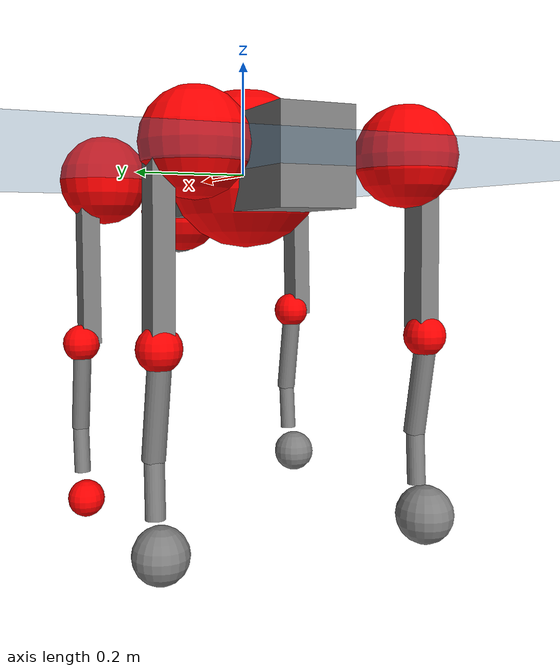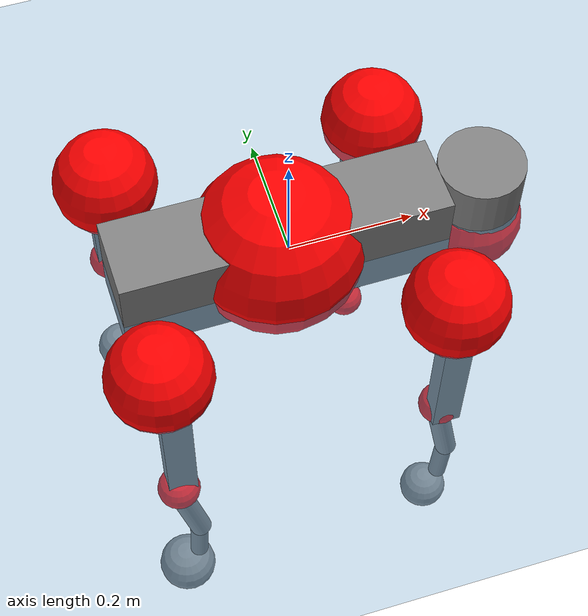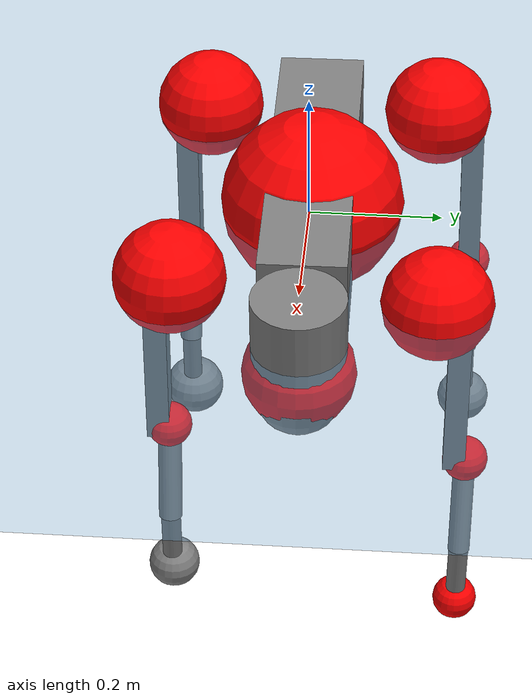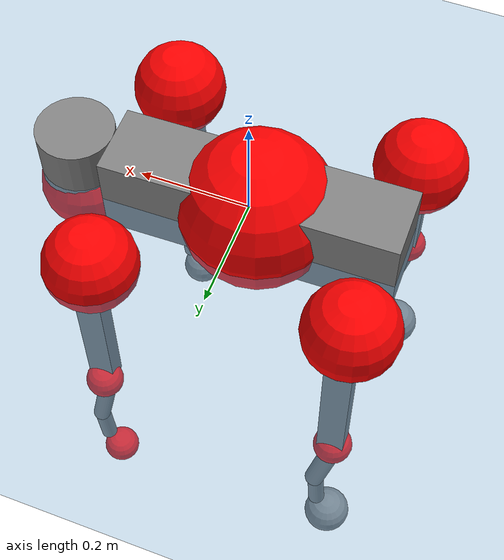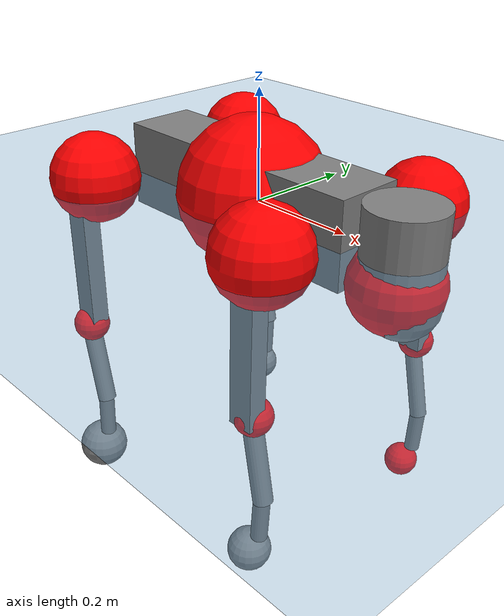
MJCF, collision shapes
<mujoco model="go2">
  <compiler angle="radian" assetdir="assets" balanceinertia="true" inertiafromgeom="false"/>

  <option timestep="0.005" density="1.2" viscosity="2e-05"/>

  <size nkey="1"/>

  <visual>
    <quality shadowsize="8192"/>
    <map shadowclip="0.5"/>
  </visual>

  <default>
    <default class="/">
      <geom contype="0" conaffinity="0" group="1" solref="-1000 -80"/>
      <site size="0.01 0.005 0.005" group="5"/>
      <general forcelimited="true" biastype="affine" gainprm="20" biasprm="0 -20 -0.5"/>
      <default class="go2">
        <joint armature="0.01" damping="0.01" frictionloss="0.2"/>
        <geom condim="1" margin="0.001"/>
        <default class="visual">
          <geom type="mesh" group="2"/>
        </default>
        <default class="collision">
          <geom group="3"/>
          <default class="foot">
            <geom size="0.022 0 0" condim="6" priority="1" friction="0.8 0.02 0.01" solimp="0.015 1 0.022"/>
          </default>
        </default>
        <default class="reward_collision_sphere">
          <geom group="5" rgba="1 0 0 1"/>
        </default>
      </default>
    </default>
  </default>

  <asset>
    <texture type="skybox" colorspace="auto" name="//unnamed_texture_0" builtin="gradient" rgb1="0.95 0.95 0.95" rgb2="0.95 0.95 0.95" width="100" height="600"/>
    <texture type="2d" colorspace="auto" name="texplane" builtin="checker" rgb1="0.345 0.575 0.748" rgb2="0.345 0.575 0.748" markrgb="1 1 1" width="512" height="512"/>
    <material name="MatPlane" class="/" texture="texplane" texuniform="true" texrepeat="2 2" specular="0.9"/>
    <material name="metal" class="/" rgba="0.9 0.95 0.95 1"/>
    <material name="black" class="/" rgba="0 0 0 1"/>
    <material name="white" class="/"/>
    <material name="gray" class="/" rgba="0.671705 0.692426 0.77427 1"/>
    <mesh name="base_0" class="/" file="base_0.obj"/>
    <mesh name="base_1" class="/" file="base_1.obj"/>
    <mesh name="base_2" class="/" file="base_2.obj"/>
    <mesh name="base_3" class="/" file="base_3.obj"/>
    <mesh name="base_4" class="/" file="base_4.obj"/>
    <mesh name="hip_0" class="/" file="hip_0.obj"/>
    <mesh name="hip_1" class="/" file="hip_1.obj"/>
    <mesh name="thigh_0" class="/" file="thigh_0.obj"/>
    <mesh name="thigh_1" class="/" file="thigh_1.obj"/>
    <mesh name="thigh_mirror_0" class="/" file="thigh_mirror_0.obj"/>
    <mesh name="thigh_mirror_1" class="/" file="thigh_mirror_1.obj"/>
    <mesh name="calf_0" class="/" file="calf_0.obj"/>
    <mesh name="calf_1" class="/" file="calf_1.obj"/>
    <mesh name="calf_mirror_0" class="/" file="calf_mirror_0.obj"/>
    <mesh name="calf_mirror_1" class="/" file="calf_mirror_1.obj"/>
    <mesh name="foot" class="/" file="foot.obj"/>
  </asset>

  <worldbody>
    <geom name="floor" class="/" size="100 100 0.125" type="plane" group="0" material="MatPlane"/>
    <light name="toplight_shadow" class="/" pos="0 0 5" dir="0.0990148 0.0990148 -0.990148" type="directional" ambient="0.04 0.04 0.04" diffuse="0.55 0.55 0.55" specular="0.12 0.12 0.12"/>
    <light name="toplight_fill" class="/" pos="0 0 5" dir="0.0990148 0.0990148 -0.990148" type="directional" castshadow="false" ambient="0.04 0.04 0.04" diffuse="0.3 0.3 0.3" specular="0.08 0.08 0.08"/>
    <body name="trunk" childclass="go2" pos="-0.0184292 0.00413848 0.010721" quat="0.999964 -7.86831e-05 0.00510524 0.00677787">
      <inertial pos="0.0422063 -0.0103998 -0.00164768" quat="0.0221094 0.697798 -0.00600247 0.715928" mass="19.9019" diaginertia="0.195776 0.897207 0.102399"/>
      <joint name="//unnamed_joint_0" type="free" armature="0" damping="0" frictionloss="0"/>
      <geom name="//unnamed_geom_1" class="visual" material="black" mesh="base_0"/>
      <geom name="//unnamed_geom_2" class="visual" material="black" mesh="base_1"/>
      <geom name="//unnamed_geom_3" class="visual" material="black" mesh="base_2"/>
      <geom name="//unnamed_geom_4" class="visual" material="white" mesh="base_3"/>
      <geom name="//unnamed_geom_5" class="visual" material="gray" mesh="base_4"/>
      <geom name="trunk_1" class="collision" size="0.260631 0.0647767 0.0789791" type="box"/>
      <geom name="trunk_2" class="collision" size="0.0692799 0.0623519" pos="0.330644 0 0.014011" type="cylinder"/>
      <geom name="trunk_3" class="collision" size="0.0651231" pos="0.339925 0 -0.0840658"/>
      <geom name="//unnamed_geom_9" class="reward_collision_sphere" size="0.13856"/>
      <geom name="//unnamed_geom_10" class="reward_collision_sphere" size="0.0831359" pos="0.324843 0 -0.0630494"/>
      <site name="imu" pos="-0.00761984 -0.0582222 -0.0233325" size="0.013856"/>
      <camera name="track" pos="0 -3.19108 0" quat="0.707107 0.707107 0 0" mode="trackcom"/>
      <camera name="ego_camera" pos="0.361968 0 0.0630494" quat="-0.5 -0.5 0.5 0.5"/>
      <body name="FL_hip" pos="0.223894 0.0822267 -0.00994307" quat="0.999986 -0.00149392 -0.00465879 -0.00188162">
        <inertial pos="-0.013248 0.0170584 0.00534148" quat="0.489113 0.490927 0.525836 0.493209" mass="1.86622" diaginertia="0.00130287 0.00482953 0.00256248"/>
        <joint name="FL_hip_joint" pos="0 0 0" axis="0.995866 0.0357689 -0.0834922" stiffness="0.0470747" range="-1.40584 1.14785" armature="0.0146271" damping="0" frictionloss="0.261197"/>
        <geom name="//unnamed_geom_11" class="visual" material="metal" mesh="hip_0"/>
        <geom name="//unnamed_geom_12" class="visual" material="gray" mesh="hip_1"/>
        <geom name="//unnamed_geom_13" class="collision" size="0.0637375 0.027712" pos="0 0.127643 0" quat="0.707107 0.707107 0 0" type="cylinder"/>
        <geom name="//unnamed_geom_14" class="reward_collision_sphere" size="0.0831359" pos="0 0.111688 0"/>
        <body name="FL_thigh" pos="-0.0110592 0.147899 -0.0118238" quat="0.99997 -0.0037334 -0.00677964 0.00104019">
          <inertial pos="-0.0180743 -0.0227776 -0.029018" quat="0.829378 0.083951 -0.020839 0.551951" mass="3.77346" diaginertia="0.0126694 0.0671906 0.0042589"/>
          <joint name="FL_thigh_joint" pos="0 0 0" axis="0.0388894 0.999012 0.0214892" stiffness="0.0935898" range="-1.77906 3.52167" armature="0.0211263" damping="0" frictionloss="0.402032"/>
          <geom name="//unnamed_geom_15" class="visual" material="metal" mesh="thigh_0"/>
          <geom name="//unnamed_geom_16" class="visual" material="gray" mesh="thigh_1"/>
          <geom name="//unnamed_geom_17" class="collision" size="0.147566 0.0169736 0.0235552" pos="0 0 -0.149217" quat="0.707107 0 0.707107 0" type="box"/>
          <body name="FL_calf" pos="-0.00515755 0.016925 -0.2965" quat="0.99998 -0.00475258 0.00398696 0.0011177">
            <inertial pos="0.0224609 0.000796153 -0.211321" quat="0.698173 -0.0302965 0.0273069 0.714766" mass="0.605205" diaginertia="0.00276171 0.00972364 0.000196766"/>
            <joint name="FL_calf_joint" pos="0 0 0" axis="0.0445106 0.998975 0.0082602" range="-2.38686 -0.914304" armature="0.00661734" damping="0.092241" frictionloss="0.11948"/>
            <geom name="//unnamed_geom_18" class="visual" material="gray" mesh="calf_0"/>
            <geom name="//unnamed_geom_19" class="visual" material="black" mesh="calf_1"/>
            <geom name="FL_calf0" class="collision" size="0.0166272 0.0831359" pos="0.00928122 0 -0.0840658" quat="0.994493 0 -0.104807 0" type="cylinder"/>
            <geom name="//unnamed_geom_21" class="collision" size="0.0152416 0.0450319" pos="0.0232031 0 -0.207362" quat="0.999688 0 0.0249974 0" type="cylinder"/>
            <geom name="//unnamed_geom_22" class="visual" pos="0 0 -0.298434" quat="1 0 0 0" material="black" mesh="foot"/>
            <geom name="FL_foot" class="foot" size="0.0252942" pos="-0.00232031 0 -0.298434"/>
            <geom name="//unnamed_geom_24" class="reward_collision_sphere" size="0.0346399"/>
            <geom name="//unnamed_geom_25" class="reward_collision_sphere" size="0.0346399" pos="-0.00232031 0 -0.298434"/>
            <site name="FL_foot" class="foot" pos="-0.00232031 0 -0.298434" size="0.013856"/>
          </body>
        </body>
      </body>
      <body name="FR_hip" pos="0.218976 -0.0823317 0.0170816" quat="0.999974 -0.00524014 0.0032343 0.00383004">
        <inertial pos="-0.0175663 0.0130209 0.000945951" quat="0.446957 0.546898 0.528675 0.470781" mass="1.80187" diaginertia="0.00251218 0.00702199 0.00345461"/>
        <joint name="FR_hip_joint" pos="0 0 0" axis="0.998347 0.0573832 -0.00311462" stiffness="0.0375352" range="-1.22498 1.03241" armature="0.00857498" damping="0" frictionloss="0.492963"/>
        <geom name="//unnamed_geom_26" class="visual" pos="0 1.69392e-09 7.26559e-08" quat="4.63268e-05 1 0 0" material="metal" mesh="hip_0"/>
        <geom name="//unnamed_geom_27" class="visual" pos="0 2.74605e-09 -1.79706e-07" quat="4.63268e-05 1 0 0" material="gray" mesh="hip_1"/>
        <geom name="//unnamed_geom_28" class="collision" size="0.0637375 0.027712" pos="0 -0.127643 0" quat="0.707107 0.707107 0 0" type="cylinder"/>
        <geom name="//unnamed_geom_29" class="reward_collision_sphere" size="0.0831359" pos="0 -0.111688 0"/>
        <body name="FR_thigh" pos="-0.00122088 -0.134158 -0.000379087" quat="0.999999 -0.000318977 0.00138054 0.000689067">
          <inertial pos="-0.0161169 0.0499429 -0.041153" quat="0.579828 -0.0635049 0.114269 0.804182" mass="2.93346" diaginertia="0.0150206 0.0760585 0.00435674"/>
          <joint name="FR_thigh_joint" pos="0 0 0" axis="-0.00727052 -0.999965 0.00422919" stiffness="0.0600647" range="-3.3849 1.27168" armature="0.0140042" damping="0.0415606" frictionloss="0.134242"/>
          <geom name="//unnamed_geom_30" class="visual" material="metal" mesh="thigh_mirror_0"/>
          <geom name="//unnamed_geom_31" class="visual" material="gray" mesh="thigh_mirror_1"/>
          <geom name="//unnamed_geom_32" class="collision" size="0.147566 0.0169736 0.0235552" pos="0 0 -0.149217" quat="0.707107 0 0.707107 0" type="box"/>
          <body name="FR_calf" pos="-0.000153341 0.0148616 -0.289723" quat="1 -1.51574e-06 -3.93255e-05 7.41267e-05">
            <inertial pos="0.00909204 -0.00295587 -0.200701" quat="0.756853 0.0174199 0.00864225 0.653296" mass="0.667775" diaginertia="0.00314591 0.0149506 0.000335417"/>
            <joint name="FR_calf_joint" pos="0 0 0" axis="0.00622942 -0.9962 0.0868693" stiffness="0.0791144" range="0.762228 2.44968" armature="0.0202774" damping="0" frictionloss="0.412411"/>
            <geom name="//unnamed_geom_33" class="visual" material="gray" mesh="calf_mirror_0"/>
            <geom name="//unnamed_geom_34" class="visual" material="black" mesh="calf_mirror_1"/>
            <geom name="FR_calf0" class="collision" size="0.0180128 0.0831359" pos="0.0116015 0 -0.0840658" quat="0.995004 0 -0.0998334 0" type="cylinder"/>
            <geom name="//unnamed_geom_36" class="collision" size="0.0152416 0.0450319" pos="0.0232031 0 -0.207362" quat="0.999688 0 0.0249974 0" type="cylinder"/>
            <geom name="//unnamed_geom_37" class="visual" pos="0 0 -0.298434" quat="1 0 0 0" material="black" mesh="foot"/>
            <geom name="FR_foot" class="foot" size="0.0398562" pos="-0.00232031 0 -0.298434"/>
            <geom name="//unnamed_geom_39" class="reward_collision_sphere" size="0.0346399"/>
            <geom name="//unnamed_geom_40" class="reward_collision_sphere" size="0.0346399" pos="-0.00232031 0 -0.298434"/>
            <site name="FR_foot" class="foot" pos="-0.00232031 0 -0.298434" size="0.013856"/>
          </body>
        </body>
      </body>
      <body name="RL_hip" pos="-0.222147 0.0722587 0.0141275" quat="0.999999 0.00117667 -5.63131e-05 0.000744773">
        <inertial pos="-0.00315561 -0.0143824 0.0139016" quat="0.522379 0.447103 0.562611 0.459008" mass="1.29322" diaginertia="0.00160166 0.00583918 0.00187629"/>
        <joint name="RL_hip_joint" pos="0 0 0" axis="-0.999914 -0.00216726 0.0128964" range="-0.937243 1.29164" armature="0.0235723" damping="0.0434097" frictionloss="0.0513228"/>
        <geom name="//unnamed_geom_41" class="visual" pos="2.09901e-09 0 4.11454e-07" quat="4.63268e-05 0 1 0" material="metal" mesh="hip_0"/>
        <geom name="//unnamed_geom_42" class="visual" pos="3.40274e-09 0 3.64901e-07" quat="4.63268e-05 0 1 0" material="gray" mesh="hip_1"/>
        <geom name="//unnamed_geom_43" class="collision" size="0.0637375 0.027712" pos="0 0.127643 0" quat="0.707107 0.707107 0 0" type="cylinder"/>
        <geom name="//unnamed_geom_44" class="reward_collision_sphere" size="0.0831359" pos="0 0.111688 0"/>
        <body name="RL_thigh" pos="-0.00253416 0.168285 -0.0162514" quat="0.999996 0.00233883 -0.000965473 -0.000899813">
          <inertial pos="-0.00462977 -0.0346752 -0.0519294" quat="0.82212 0.109424 0.0169365 0.558443" mass="2.15633" diaginertia="0.0107831 0.0503285 0.00358369"/>
          <joint name="RL_thigh_joint" pos="0 0 0" axis="0.0592957 0.998091 -0.0172665" range="-0.602117 4.45528" armature="0.00464633" damping="0.0747198" frictionloss="0.276229"/>
          <geom name="//unnamed_geom_45" class="visual" material="metal" mesh="thigh_0"/>
          <geom name="//unnamed_geom_46" class="visual" material="gray" mesh="thigh_1"/>
          <geom name="//unnamed_geom_47" class="collision" size="0.147566 0.0169736 0.0235552" pos="0 0 -0.149217" quat="0.707107 0 0.707107 0" type="box"/>
          <body name="RL_calf" pos="-0.00180013 -0.0002194 -0.281396" quat="0.999994 -0.00148426 0.00302036 -9.88365e-05">
            <inertial pos="0.0163573 -0.0189848 -0.202252" quat="0.727113 0.051946 0.00493787 0.684532" mass="0.568485" diaginertia="0.00319308 0.0128248 0.00031327"/>
            <joint name="RL_calf_joint" pos="0 0 0" axis="-0.0244906 0.999533 -0.0182958" stiffness="0.0925744" range="-2.71108 -1.04571" armature="0.00626466" damping="0.0683075" frictionloss="0.031894"/>
            <geom name="//unnamed_geom_48" class="visual" material="gray" mesh="calf_0"/>
            <geom name="//unnamed_geom_49" class="visual" material="black" mesh="calf_1"/>
            <geom name="RL_calf0" class="collision" size="0.0180128 0.0831359" pos="0.0116015 0 -0.0840658" quat="0.995004 0 -0.0998334 0" type="cylinder"/>
            <geom name="//unnamed_geom_51" class="collision" size="0.0152416 0.0450319" pos="0.0232031 0 -0.207362" quat="0.999688 0 0.0249974 0" type="cylinder"/>
            <geom name="//unnamed_geom_52" class="visual" pos="0 0 -0.298434" quat="1 0 0 0" material="black" mesh="foot"/>
            <geom name="RL_foot" class="foot" size="0.0431506" pos="-0.00232031 0 -0.298434"/>
            <geom name="//unnamed_geom_54" class="reward_collision_sphere" size="0.0346399"/>
            <geom name="//unnamed_geom_55" class="reward_collision_sphere" size="0.0346399" pos="-0.00232031 0 -0.298434"/>
            <site name="RL_foot" class="foot" pos="-0.00232031 0 -0.298434" size="0.013856"/>
          </body>
        </body>
      </body>
      <body name="RR_hip" pos="-0.233334 -0.0629511 0.00605886" quat="0.999962 -0.00269613 -0.00289297 -0.0077795">
        <inertial pos="-0.0115212 -0.0171797 0.0175388" quat="0.454852 0.543921 0.508718 0.488329" mass="1.76881" diaginertia="0.00188966 0.00631376 0.00269696"/>
        <joint name="RR_hip_joint" pos="0 0 0" axis="-0.995882 0.0711365 -0.056204" range="-1.22927 0.931082" armature="0.0218565" damping="0.0390243" frictionloss="0.187773"/>
        <geom name="//unnamed_geom_56" class="visual" pos="-2.08393e-09 1.69392e-09 3.38798e-07" quat="2.14617e-09 4.63268e-05 4.63268e-05 -1" material="metal" mesh="hip_0"/>
        <geom name="//unnamed_geom_57" class="visual" pos="-3.44003e-09 2.74605e-09 5.44607e-07" quat="2.14617e-09 4.63268e-05 4.63268e-05 -1" material="gray" mesh="hip_1"/>
        <geom name="//unnamed_geom_58" class="collision" size="0.0637375 0.027712" pos="0 -0.127643 0" quat="0.707107 0.707107 0 0" type="cylinder"/>
        <geom name="//unnamed_geom_59" class="reward_collision_sphere" size="0.0831359" pos="0 -0.111688 0"/>
        <body name="RR_thigh" pos="0.00768344 -0.148189 0.0178624" quat="1 -0.000158332 -8.30991e-05 3.9859e-05">
          <inertial pos="0.000971464 0.0337094 -0.0458663" quat="0.55961 -0.0200354 0.0899654 0.823615" mass="3.62795" diaginertia="0.0133141 0.0500946 0.00461491"/>
          <joint name="RR_thigh_joint" pos="0 0 0" axis="-0.0233027 -0.999459 -0.0231966" range="-4.55196 0.208825" armature="0.0171078" damping="0.00153209" frictionloss="0.186906"/>
          <geom name="//unnamed_geom_60" class="visual" material="metal" mesh="thigh_mirror_0"/>
          <geom name="//unnamed_geom_61" class="visual" material="gray" mesh="thigh_mirror_1"/>
          <geom name="//unnamed_geom_62" class="collision" size="0.147566 0.0169736 0.0235552" pos="0 0 -0.149217" quat="0.707107 0 0.707107 0" type="box"/>
          <body name="RR_calf" pos="-0.00569275 -0.00306898 -0.309317" quat="0.999998 -0.000636554 -0.00110163 0.00162269">
            <inertial pos="0.0212166 -0.00423896 -0.195527" quat="0.71804 0.0483592 0.0111988 0.694229" mass="0.685124" diaginertia="0.00280249 0.0147931 0.000235965"/>
            <joint name="RR_calf_joint" pos="0 0 0" axis="-0.00656628 -0.996585 0.0823127" stiffness="0.00999062" range="1.01995 2.76594" armature="0.0190931" damping="0" frictionloss="0.38505"/>
            <geom name="//unnamed_geom_63" class="visual" material="gray" mesh="calf_mirror_0"/>
            <geom name="//unnamed_geom_64" class="visual" material="black" mesh="calf_mirror_1"/>
            <geom name="RR_calf0" class="collision" size="0.0180128 0.0831359" pos="0.0116015 0 -0.0840658" quat="0.995004 0 -0.0998334 0" type="cylinder"/>
            <geom name="//unnamed_geom_66" class="collision" size="0.0152416 0.0450319" pos="0.0232031 0 -0.207362" quat="0.999688 0 0.0249974 0" type="cylinder"/>
            <geom name="//unnamed_geom_67" class="visual" pos="0 0 -0.298434" quat="1 0 0 0" material="black" mesh="foot"/>
            <geom name="RR_foot" class="foot" size="0.0483449" pos="-0.00232031 0 -0.298434"/>
            <geom name="//unnamed_geom_69" class="reward_collision_sphere" size="0.0346399"/>
            <geom name="//unnamed_geom_70" class="reward_collision_sphere" size="0.0346399" pos="-0.00232031 0 -0.298434"/>
            <site name="RR_foot" class="foot" pos="-0.00232031 0 -0.298434" size="0.013856"/>
          </body>
        </body>
      </body>
    </body>
  </worldbody>

  <contact>
    <pair class="/" geom1="floor" geom2="FL_foot" name="//unnamed_contact_0"/>
    <pair class="/" geom1="floor" geom2="FR_foot" name="//unnamed_contact_1"/>
    <pair class="/" geom1="floor" geom2="RL_foot" name="//unnamed_contact_2"/>
    <pair class="/" geom1="floor" geom2="RR_foot" name="//unnamed_contact_3"/>
  </contact>

  <actuator>
    <general name="FL_hip" class="/" joint="FL_hip_joint" forcerange="-33.4986 33.4986" gainprm="19.4345" biasprm="0 -19.4345 -0.925216"/>
    <general name="FL_thigh" class="/" joint="FL_thigh_joint" forcerange="-46.9554 46.9554" gainprm="19.4345" biasprm="0 -19.4345 -0.925216"/>
    <general name="FL_calf" class="/" joint="FL_calf_joint" forcerange="-75.5082 75.5082" gainprm="19.4345" biasprm="0 -19.4345 -0.925216"/>
    <general name="FR_hip" class="/" joint="FR_hip_joint" forcerange="-37.0626 37.0626" gainprm="19.4345" biasprm="0 -19.4345 -0.925216"/>
    <general name="FR_thigh" class="/" joint="FR_thigh_joint" forcerange="-18.8618 18.8618" gainprm="19.4345" biasprm="0 -19.4345 -0.925216"/>
    <general name="FR_calf" class="/" joint="FR_calf_joint" forcerange="-67.6116 67.6116" gainprm="19.4345" biasprm="0 -19.4345 -0.925216"/>
    <general name="RL_hip" class="/" joint="RL_hip_joint" forcerange="-11.396 11.396" gainprm="19.4345" biasprm="0 -19.4345 -0.925216"/>
    <general name="RL_thigh" class="/" joint="RL_thigh_joint" forcerange="-46.4666 46.4666" gainprm="19.4345" biasprm="0 -19.4345 -0.925216"/>
    <general name="RL_calf" class="/" joint="RL_calf_joint" forcerange="-104.028 104.028" gainprm="19.4345" biasprm="0 -19.4345 -0.925216"/>
    <general name="RR_hip" class="/" joint="RR_hip_joint" forcerange="-49.045 49.045" gainprm="19.4345" biasprm="0 -19.4345 -0.925216"/>
    <general name="RR_thigh" class="/" joint="RR_thigh_joint" forcerange="-11.939 11.939" gainprm="19.4345" biasprm="0 -19.4345 -0.925216"/>
    <general name="RR_calf" class="/" joint="RR_calf_joint" forcerange="-50.0743 50.0743" gainprm="19.4345" biasprm="0 -19.4345 -0.925216"/>
  </actuator>

  <sensor>
    <gyro site="imu" name="imu_angular_velocity"/>
    <velocimeter site="imu" name="imu_linear_velocity"/>
    <framelinvel objtype="site" objname="FL_foot" name="FL_foot_global_linear_velocity"/>
    <framelinvel objtype="site" objname="FR_foot" name="FR_foot_global_linear_velocity"/>
    <framelinvel objtype="site" objname="RL_foot" name="RL_foot_global_linear_velocity"/>
    <framelinvel objtype="site" objname="RR_foot" name="RR_foot_global_linear_velocity"/>
  </sensor>

  <keyframe>
    <key name="home" qpos="0 0 0.325 1 0 0 0 0.1 0.8 -1.5 -0.1 -0.8 1.5 -0.1 0.8 -1.5 0.1 -0.8 1.5"/>
  </keyframe>
</mujoco>
